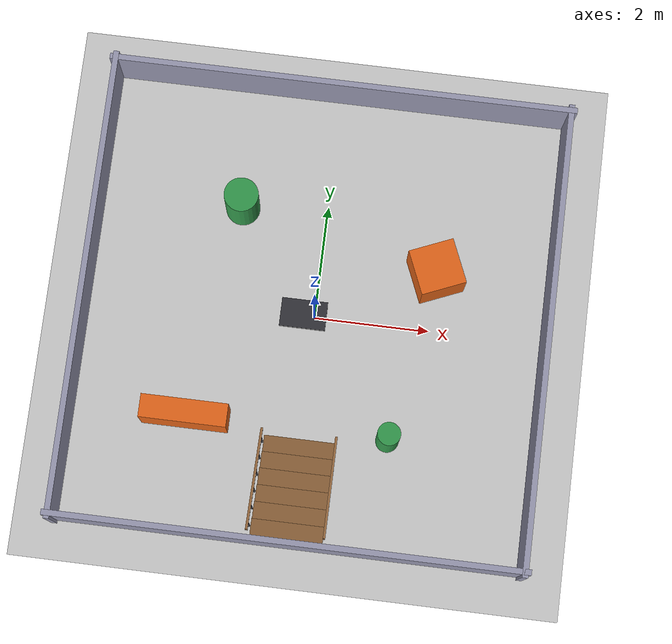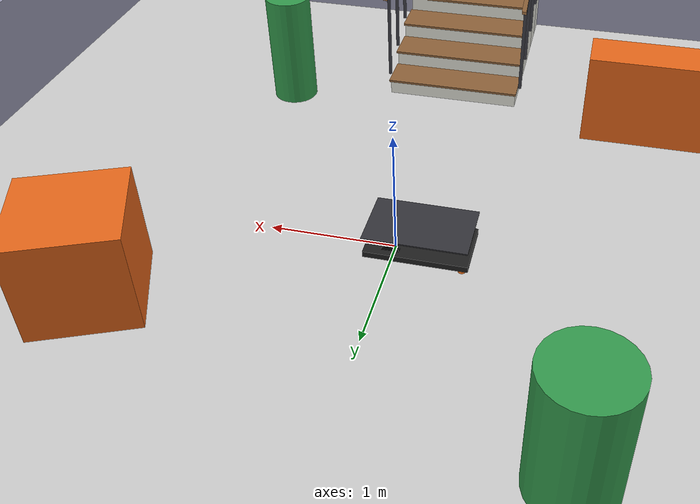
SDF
<?xml version="1.0"?>
<sdf version="1.9">
  <world name="amr_world">
    <physics name="1ms" type="ignored">
      <max_step_size>0.001</max_step_size>
      <real_time_factor>1.0</real_time_factor>
    </physics>

    <plugin filename="gz-sim-physics-system" name="gz::sim::systems::Physics"/>
    <plugin filename="gz-sim-user-commands-system" name="gz::sim::systems::UserCommands"/>
    <plugin filename="gz-sim-scene-broadcaster-system" name="gz::sim::systems::SceneBroadcaster"/>
    <plugin filename="gz-sim-sensors-system" name="gz::sim::systems::Sensors">
      <render_engine>ogre2</render_engine>
    </plugin>

    <!-- Indoor-style lighting: strong ambient so surfaces facing away from the sun aren't black -->
    <scene>
      <ambient>0.7 0.7 0.7 1</ambient>
      <background>0.85 0.85 0.85 1</background>
      <shadows>true</shadows>
    </scene>

    <light type="directional" name="sun">
      <cast_shadows>true</cast_shadows>
      <pose>0 0 10 0 0 0</pose>
      <diffuse>0.8 0.8 0.8 1</diffuse>
      <specular>0.2 0.2 0.2 1</specular>
      <direction>-0.5 0.1 -0.9</direction>
    </light>

    <model name="ground_plane">
      <static>true</static>
      <link name="link">
        <collision name="collision">
          <geometry><plane><normal>0 0 1</normal><size>20 20</size></plane></geometry>
        </collision>
        <visual name="visual">
          <geometry><plane><normal>0 0 1</normal><size>20 20</size></plane></geometry>
          <material>
            <ambient>0.8 0.8 0.8 1</ambient>
            <diffuse>0.8 0.8 0.8 1</diffuse>
          </material>
        </visual>
      </link>
    </model>

    <!-- 8 x 8 m arena -->
    <model name="arena">
      <static>true</static>
      <link name="walls">
        <collision name="north_c"><pose>0 4 0.5 0 0 0</pose><geometry><box><size>8.2 0.1 1</size></box></geometry></collision>
        <visual name="north_v"><pose>0 4 0.5 0 0 0</pose><geometry><box><size>8.2 0.1 1</size></box></geometry>
          <material><ambient>0.6 0.6 0.7 1</ambient><diffuse>0.6 0.6 0.7 1</diffuse></material></visual>
        <collision name="south_c"><pose>0 -4 0.5 0 0 0</pose><geometry><box><size>8.2 0.1 1</size></box></geometry></collision>
        <visual name="south_v"><pose>0 -4 0.5 0 0 0</pose><geometry><box><size>8.2 0.1 1</size></box></geometry>
          <material><ambient>0.6 0.6 0.7 1</ambient><diffuse>0.6 0.6 0.7 1</diffuse></material></visual>
        <collision name="east_c"><pose>4 0 0.5 0 0 0</pose><geometry><box><size>0.1 8.2 1</size></box></geometry></collision>
        <visual name="east_v"><pose>4 0 0.5 0 0 0</pose><geometry><box><size>0.1 8.2 1</size></box></geometry>
          <material><ambient>0.6 0.6 0.7 1</ambient><diffuse>0.6 0.6 0.7 1</diffuse></material></visual>
        <collision name="west_c"><pose>-4 0 0.5 0 0 0</pose><geometry><box><size>0.1 8.2 1</size></box></geometry></collision>
        <visual name="west_v"><pose>-4 0 0.5 0 0 0</pose><geometry><box><size>0.1 8.2 1</size></box></geometry>
          <material><ambient>0.6 0.6 0.7 1</ambient><diffuse>0.6 0.6 0.7 1</diffuse></material></visual>
      </link>
    </model>

    <!-- Obstacles -->
    <model name="box_1">
      <static>true</static>
      <pose>2 1 0.4 0 0 0.4</pose>
      <link name="link">
        <collision name="c"><geometry><box><size>0.8 0.8 0.8</size></box></geometry></collision>
        <visual name="v"><geometry><box><size>0.8 0.8 0.8</size></box></geometry>
          <material><ambient>0.9 0.4 0.1 1</ambient><diffuse>0.9 0.4 0.1 1</diffuse></material></visual>
      </link>
    </model>
    <model name="box_2">
      <static>true</static>
      <pose>-2 -2 0.4 0 0 0</pose>
      <link name="link">
        <collision name="c"><geometry><box><size>1.5 0.4 0.8</size></box></geometry></collision>
        <visual name="v"><geometry><box><size>1.5 0.4 0.8</size></box></geometry>
          <material><ambient>0.9 0.4 0.1 1</ambient><diffuse>0.9 0.4 0.1 1</diffuse></material></visual>
      </link>
    </model>
    <model name="pillar_1">
      <static>true</static>
      <pose>-1.5 1.8 0.5 0 0 0</pose>
      <link name="link">
        <collision name="c"><geometry><cylinder><radius>0.3</radius><length>1</length></cylinder></geometry></collision>
        <visual name="v"><geometry><cylinder><radius>0.3</radius><length>1</length></cylinder></geometry>
          <material><ambient>0.2 0.6 0.3 1</ambient><diffuse>0.2 0.6 0.3 1</diffuse></material></visual>
      </link>
    </model>
    <model name="pillar_2">
      <static>true</static>
      <pose>1.5 -2 0.5 0 0 0</pose>
      <link name="link">
        <collision name="c"><geometry><cylinder><radius>0.2</radius><length>1</length></cylinder></geometry></collision>
        <visual name="v"><geometry><cylinder><radius>0.2</radius><length>1</length></cylinder></geometry>
          <material><ambient>0.2 0.6 0.3 1</ambient><diffuse>0.2 0.6 0.3 1</diffuse></material></visual>
      </link>
    </model>

    <!-- Staircase against the south wall. The first step (15 cm) is below the lidar's
         scan plane (17.5 cm), so only the camera and YOLOv8 can see it coming. -->
    <model name="stairs">
      <static>true</static>
      <link name="link">
        <collision name="step0_c"><pose>0 -2.350 0.075 0 0 0</pose><geometry><box><size>1.2 0.3 0.150</size></box></geometry></collision>
        <visual name="step0_riser"><pose>0 -2.350 0.065 0 0 0</pose><geometry><box><size>1.2 0.3 0.130</size></box></geometry><material><ambient>0.9 0.9 0.86 1</ambient><diffuse>0.9 0.9 0.86 1</diffuse></material></visual>
        <visual name="step0_tread"><pose>0 -2.335 0.140 0 0 0</pose><geometry><box><size>1.22 0.330 0.02</size></box></geometry><material><ambient>0.55 0.38 0.22 1</ambient><diffuse>0.55 0.38 0.22 1</diffuse></material></visual>
        <collision name="step1_c"><pose>0 -2.650 0.150 0 0 0</pose><geometry><box><size>1.2 0.3 0.300</size></box></geometry></collision>
        <visual name="step1_riser"><pose>0 -2.650 0.140 0 0 0</pose><geometry><box><size>1.2 0.3 0.280</size></box></geometry><material><ambient>0.9 0.9 0.86 1</ambient><diffuse>0.9 0.9 0.86 1</diffuse></material></visual>
        <visual name="step1_tread"><pose>0 -2.635 0.290 0 0 0</pose><geometry><box><size>1.22 0.330 0.02</size></box></geometry><material><ambient>0.55 0.38 0.22 1</ambient><diffuse>0.55 0.38 0.22 1</diffuse></material></visual>
        <collision name="step2_c"><pose>0 -2.950 0.225 0 0 0</pose><geometry><box><size>1.2 0.3 0.450</size></box></geometry></collision>
        <visual name="step2_riser"><pose>0 -2.950 0.215 0 0 0</pose><geometry><box><size>1.2 0.3 0.430</size></box></geometry><material><ambient>0.9 0.9 0.86 1</ambient><diffuse>0.9 0.9 0.86 1</diffuse></material></visual>
        <visual name="step2_tread"><pose>0 -2.935 0.440 0 0 0</pose><geometry><box><size>1.22 0.330 0.02</size></box></geometry><material><ambient>0.55 0.38 0.22 1</ambient><diffuse>0.55 0.38 0.22 1</diffuse></material></visual>
        <collision name="step3_c"><pose>0 -3.250 0.300 0 0 0</pose><geometry><box><size>1.2 0.3 0.600</size></box></geometry></collision>
        <visual name="step3_riser"><pose>0 -3.250 0.290 0 0 0</pose><geometry><box><size>1.2 0.3 0.580</size></box></geometry><material><ambient>0.9 0.9 0.86 1</ambient><diffuse>0.9 0.9 0.86 1</diffuse></material></visual>
        <visual name="step3_tread"><pose>0 -3.235 0.590 0 0 0</pose><geometry><box><size>1.22 0.330 0.02</size></box></geometry><material><ambient>0.55 0.38 0.22 1</ambient><diffuse>0.55 0.38 0.22 1</diffuse></material></visual>
        <collision name="step4_c"><pose>0 -3.550 0.375 0 0 0</pose><geometry><box><size>1.2 0.3 0.750</size></box></geometry></collision>
        <visual name="step4_riser"><pose>0 -3.550 0.365 0 0 0</pose><geometry><box><size>1.2 0.3 0.730</size></box></geometry><material><ambient>0.9 0.9 0.86 1</ambient><diffuse>0.9 0.9 0.86 1</diffuse></material></visual>
        <visual name="step4_tread"><pose>0 -3.535 0.740 0 0 0</pose><geometry><box><size>1.22 0.330 0.02</size></box></geometry><material><ambient>0.55 0.38 0.22 1</ambient><diffuse>0.55 0.38 0.22 1</diffuse></material></visual>
        <collision name="step5_c"><pose>0 -3.850 0.450 0 0 0</pose><geometry><box><size>1.2 0.3 0.900</size></box></geometry></collision>
        <visual name="step5_riser"><pose>0 -3.850 0.440 0 0 0</pose><geometry><box><size>1.2 0.3 0.880</size></box></geometry><material><ambient>0.9 0.9 0.86 1</ambient><diffuse>0.9 0.9 0.86 1</diffuse></material></visual>
        <visual name="step5_tread"><pose>0 -3.835 0.890 0 0 0</pose><geometry><box><size>1.22 0.330 0.02</size></box></geometry><material><ambient>0.55 0.38 0.22 1</ambient><diffuse>0.55 0.38 0.22 1</diffuse></material></visual>
        <visual name="post_l0"><pose>0.630 -2.300 0.600 0 0 0</pose><geometry><cylinder><radius>0.015</radius><length>0.9</length></cylinder></geometry><material><ambient>0.25 0.25 0.28 1</ambient><diffuse>0.25 0.25 0.28 1</diffuse></material></visual>
        <visual name="post_l1"><pose>0.630 -2.600 0.750 0 0 0</pose><geometry><cylinder><radius>0.015</radius><length>0.9</length></cylinder></geometry><material><ambient>0.25 0.25 0.28 1</ambient><diffuse>0.25 0.25 0.28 1</diffuse></material></visual>
        <visual name="post_l2"><pose>0.630 -2.900 0.900 0 0 0</pose><geometry><cylinder><radius>0.015</radius><length>0.9</length></cylinder></geometry><material><ambient>0.25 0.25 0.28 1</ambient><diffuse>0.25 0.25 0.28 1</diffuse></material></visual>
        <visual name="post_l3"><pose>0.630 -3.200 1.050 0 0 0</pose><geometry><cylinder><radius>0.015</radius><length>0.9</length></cylinder></geometry><material><ambient>0.25 0.25 0.28 1</ambient><diffuse>0.25 0.25 0.28 1</diffuse></material></visual>
        <visual name="post_l4"><pose>0.630 -3.500 1.200 0 0 0</pose><geometry><cylinder><radius>0.015</radius><length>0.9</length></cylinder></geometry><material><ambient>0.25 0.25 0.28 1</ambient><diffuse>0.25 0.25 0.28 1</diffuse></material></visual>
        <visual name="post_l5"><pose>0.630 -3.800 1.350 0 0 0</pose><geometry><cylinder><radius>0.015</radius><length>0.9</length></cylinder></geometry><material><ambient>0.25 0.25 0.28 1</ambient><diffuse>0.25 0.25 0.28 1</diffuse></material></visual>
        <visual name="rail_l"><pose>0.630 -3.050 1.425 -0.4636 0 0</pose><geometry><box><size>0.04 1.977 0.04</size></box></geometry><material><ambient>0.55 0.38 0.22 1</ambient><diffuse>0.55 0.38 0.22 1</diffuse></material></visual>
        <visual name="post_r0"><pose>-0.630 -2.300 0.600 0 0 0</pose><geometry><cylinder><radius>0.015</radius><length>0.9</length></cylinder></geometry><material><ambient>0.25 0.25 0.28 1</ambient><diffuse>0.25 0.25 0.28 1</diffuse></material></visual>
        <visual name="post_r1"><pose>-0.630 -2.600 0.750 0 0 0</pose><geometry><cylinder><radius>0.015</radius><length>0.9</length></cylinder></geometry><material><ambient>0.25 0.25 0.28 1</ambient><diffuse>0.25 0.25 0.28 1</diffuse></material></visual>
        <visual name="post_r2"><pose>-0.630 -2.900 0.900 0 0 0</pose><geometry><cylinder><radius>0.015</radius><length>0.9</length></cylinder></geometry><material><ambient>0.25 0.25 0.28 1</ambient><diffuse>0.25 0.25 0.28 1</diffuse></material></visual>
        <visual name="post_r3"><pose>-0.630 -3.200 1.050 0 0 0</pose><geometry><cylinder><radius>0.015</radius><length>0.9</length></cylinder></geometry><material><ambient>0.25 0.25 0.28 1</ambient><diffuse>0.25 0.25 0.28 1</diffuse></material></visual>
        <visual name="post_r4"><pose>-0.630 -3.500 1.200 0 0 0</pose><geometry><cylinder><radius>0.015</radius><length>0.9</length></cylinder></geometry><material><ambient>0.25 0.25 0.28 1</ambient><diffuse>0.25 0.25 0.28 1</diffuse></material></visual>
        <visual name="post_r5"><pose>-0.630 -3.800 1.350 0 0 0</pose><geometry><cylinder><radius>0.015</radius><length>0.9</length></cylinder></geometry><material><ambient>0.25 0.25 0.28 1</ambient><diffuse>0.25 0.25 0.28 1</diffuse></material></visual>
        <visual name="rail_r"><pose>-0.630 -3.050 1.425 -0.4636 0 0</pose><geometry><box><size>0.04 1.977 0.04</size></box></geometry><material><ambient>0.55 0.38 0.22 1</ambient><diffuse>0.55 0.38 0.22 1</diffuse></material></visual>
      </link>
    </model>

    <model name="amr">
      <!-- base_link sits on the drive axle, one wheel radius above the floor; the frame centre is 0.2 m behind it -->
      <pose>0 0 0.075 0 0 0</pose>

      <link name="base_link">
        <inertial>
          <pose>-0.2 0 0 0 0 0</pose>
          <mass>8.0</mass>
          <inertia><ixx>0.137</ixx><iyy>0.428</iyy><izz>0.562</izz></inertia>
        </inertial>
        <collision name="c"><pose>-0.2 0 0 0 0 0</pose><geometry><box><size>0.8 0.45 0.05</size></box></geometry></collision>
        <visual name="v"><pose>-0.2 0 0 0 0 0</pose><geometry><box><size>0.8 0.45 0.05</size></box></geometry>
          <material><ambient>0.12 0.12 0.12 1</ambient><diffuse>0.12 0.12 0.12 1</diffuse></material></visual>
        <visual name="deck"><pose>-0.2 0 0.17 0 0 0</pose><geometry><box><size>0.8 0.5 0.01</size></box></geometry>
          <material><ambient>0.2 0.2 0.22 1</ambient><diffuse>0.2 0.2 0.22 1</diffuse></material></visual>
        <!-- Forward-facing camera for the YOLOv8 hazard detector -->
        <sensor name="camera" type="camera">
          <pose>0.2 0 0.17 0 0.12 0</pose>
          <topic>camera/image_raw</topic>
          <gz_frame_id>camera_link</gz_frame_id>
          <update_rate>15</update_rate>
          <always_on>true</always_on>
          <camera>
            <horizontal_fov>1.085</horizontal_fov>
            <image><width>640</width><height>480</height><format>R8G8B8</format></image>
            <clip><near>0.05</near><far>20</far></clip>
          </camera>
        </sensor>
      </link>

      <link name="left_wheel">
        <pose>0 0.15 0 -1.5707 0 0</pose>
        <inertial><mass>0.5</mass><inertia><ixx>0.00077</ixx><iyy>0.00077</iyy><izz>0.0014</izz></inertia></inertial>
        <collision name="c"><geometry><cylinder><radius>0.075</radius><length>0.04</length></cylinder></geometry></collision>
        <visual name="v"><geometry><cylinder><radius>0.075</radius><length>0.04</length></cylinder></geometry>
          <material><ambient>0.05 0.05 0.05 1</ambient><diffuse>0.05 0.05 0.05 1</diffuse></material></visual>
      </link>
      <joint name="left_wheel_joint" type="revolute">
        <parent>base_link</parent><child>left_wheel</child>
        <axis><xyz>0 0 1</xyz><limit><lower>-1e16</lower><upper>1e16</upper></limit></axis>
      </joint>
      <link name="right_wheel">
        <pose>0 -0.15 0 -1.5707 0 0</pose>
        <inertial><mass>0.5</mass><inertia><ixx>0.00077</ixx><iyy>0.00077</iyy><izz>0.0014</izz></inertia></inertial>
        <collision name="c"><geometry><cylinder><radius>0.075</radius><length>0.04</length></cylinder></geometry></collision>
        <visual name="v"><geometry><cylinder><radius>0.075</radius><length>0.04</length></cylinder></geometry>
          <material><ambient>0.05 0.05 0.05 1</ambient><diffuse>0.05 0.05 0.05 1</diffuse></material></visual>
      </link>
      <joint name="right_wheel_joint" type="revolute">
        <parent>base_link</parent><child>right_wheel</child>
        <axis><xyz>0 0 1</xyz><limit><lower>-1e16</lower><upper>1e16</upper></limit></axis>
      </joint>

      <link name="rear_left_caster">
        <pose>-0.55 0.18 -0.0375 0 0 0</pose>
        <inertial><mass>0.1</mass><inertia><ixx>0.00006</ixx><iyy>0.00006</iyy><izz>0.00006</izz></inertia></inertial>
        <collision name="c">
          <geometry><sphere><radius>0.0375</radius></sphere></geometry>
          <surface><friction><ode><mu>0</mu><mu2>0</mu2></ode></friction></surface>
        </collision>
        <visual name="v"><geometry><sphere><radius>0.0375</radius></sphere></geometry>
          <material><ambient>0.95 0.45 0.1 1</ambient><diffuse>0.95 0.45 0.1 1</diffuse></material></visual>
      </link>
      <joint name="rear_left_caster_joint" type="fixed"><parent>base_link</parent><child>rear_left_caster</child></joint>
      <link name="rear_right_caster">
        <pose>-0.55 -0.18 -0.0375 0 0 0</pose>
        <inertial><mass>0.1</mass><inertia><ixx>0.00006</ixx><iyy>0.00006</iyy><izz>0.00006</izz></inertia></inertial>
        <collision name="c">
          <geometry><sphere><radius>0.0375</radius></sphere></geometry>
          <surface><friction><ode><mu>0</mu><mu2>0</mu2></ode></friction></surface>
        </collision>
        <visual name="v"><geometry><sphere><radius>0.0375</radius></sphere></geometry>
          <material><ambient>0.95 0.45 0.1 1</ambient><diffuse>0.95 0.45 0.1 1</diffuse></material></visual>
      </link>
      <joint name="rear_right_caster_joint" type="fixed"><parent>base_link</parent><child>rear_right_caster</child></joint>

      <link name="lidar_link">
        <pose>-0.2 0 0.10 0 0 0</pose>
        <inertial>
          <mass>0.2</mass>
          <inertia><ixx>0.0001</ixx><iyy>0.0001</iyy><izz>0.0001</izz></inertia>
        </inertial>
        <visual name="v"><geometry><cylinder><radius>0.035</radius><length>0.04</length></cylinder></geometry>
          <material><ambient>0.15 0.15 0.15 1</ambient><diffuse>0.15 0.15 0.15 1</diffuse></material></visual>
        <sensor name="lidar" type="gpu_lidar">
          <topic>scan</topic>
          <gz_frame_id>lidar_link</gz_frame_id>
          <update_rate>10</update_rate>
          <always_on>true</always_on>
          <visualize>true</visualize>
          <lidar>
            <scan>
              <horizontal>
                <samples>360</samples>
                <resolution>1</resolution>
                <min_angle>-3.14159</min_angle>
                <max_angle>3.14159</max_angle>
              </horizontal>
              <vertical>
                <samples>1</samples>
                <min_angle>0</min_angle>
                <max_angle>0</max_angle>
              </vertical>
            </scan>
            <range>
              <min>0.15</min>
              <max>12.0</max>
              <resolution>0.01</resolution>
            </range>
          </lidar>
        </sensor>
      </link>
      <joint name="lidar_joint" type="fixed"><parent>base_link</parent><child>lidar_link</child></joint>

      <!-- Wheel angles for robot_state_publisher, bridged to /joint_states -->
      <plugin filename="gz-sim-joint-state-publisher-system" name="gz::sim::systems::JointStatePublisher">
        <joint_name>left_wheel_joint</joint_name>
        <joint_name>right_wheel_joint</joint_name>
      </plugin>

      <plugin filename="gz-sim-diff-drive-system" name="gz::sim::systems::DiffDrive">
        <left_joint>left_wheel_joint</left_joint>
        <right_joint>right_wheel_joint</right_joint>
        <wheel_separation>0.30</wheel_separation>
        <wheel_radius>0.075</wheel_radius>
        <max_linear_acceleration>1.0</max_linear_acceleration>
        <max_linear_velocity>0.45</max_linear_velocity>
        <topic>cmd_vel</topic>
        <odom_topic>odom</odom_topic>
        <tf_topic>tf</tf_topic>
        <frame_id>odom</frame_id>
        <child_frame_id>base_link</child_frame_id>
        <odom_publish_frequency>30</odom_publish_frequency>
      </plugin>
    </model>
  </world>
</sdf>
